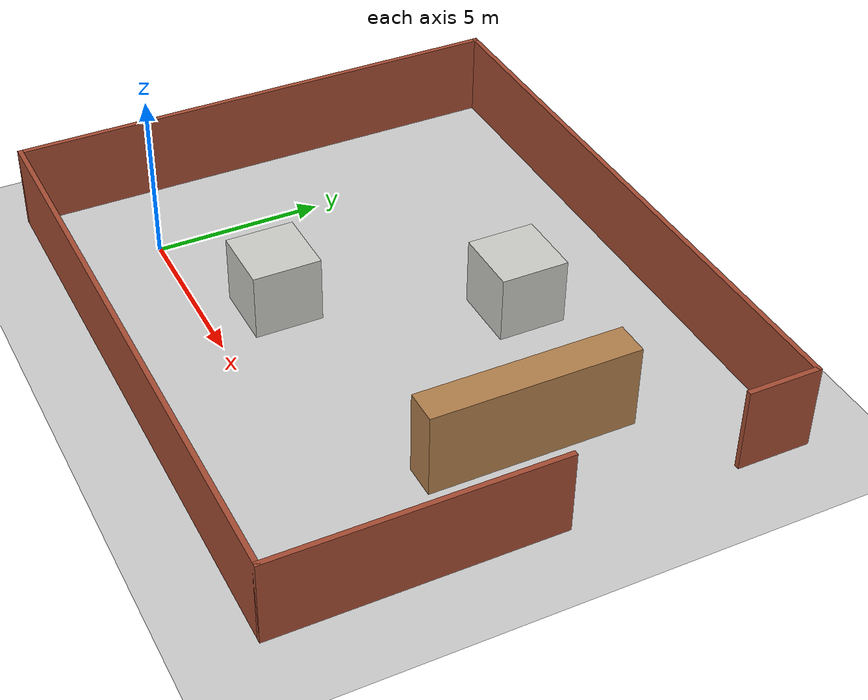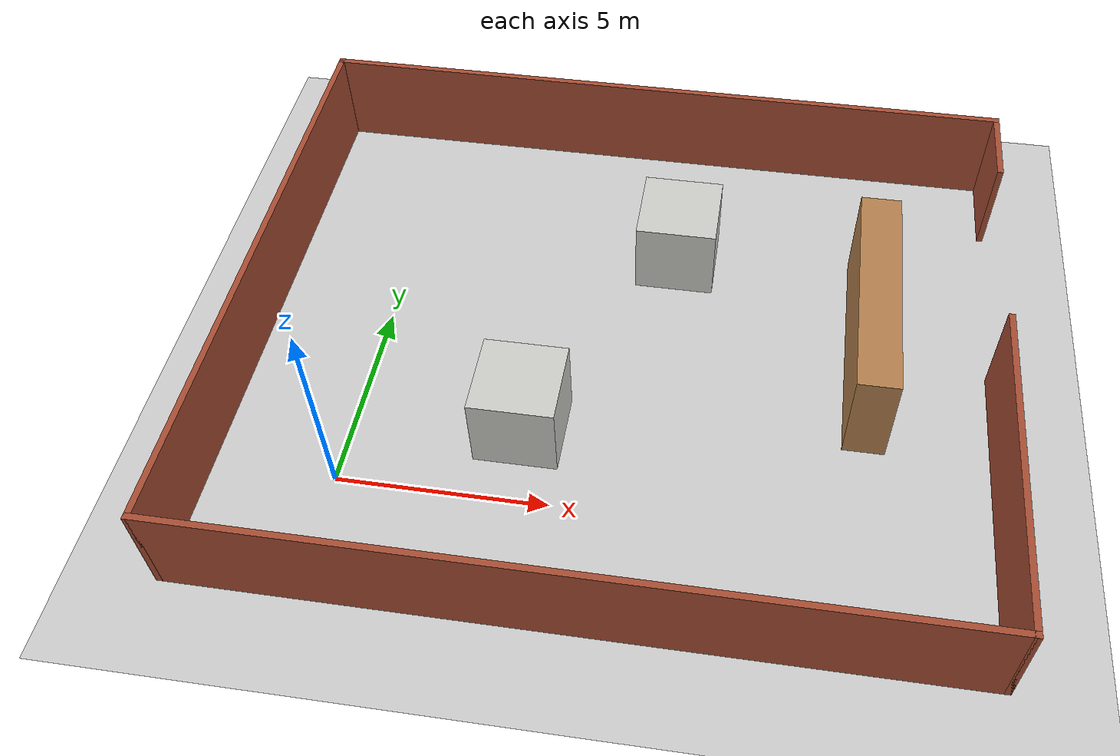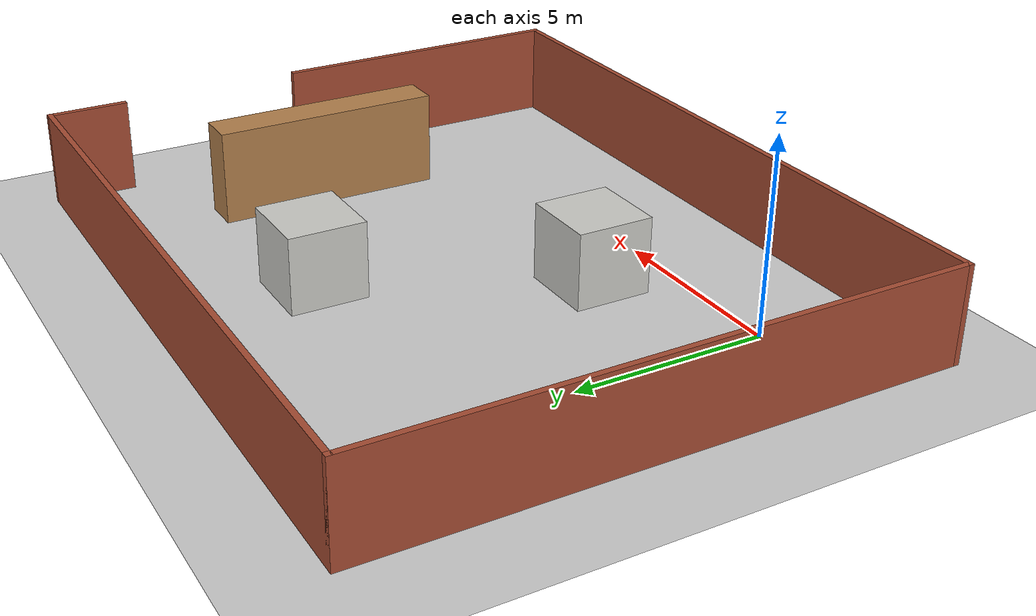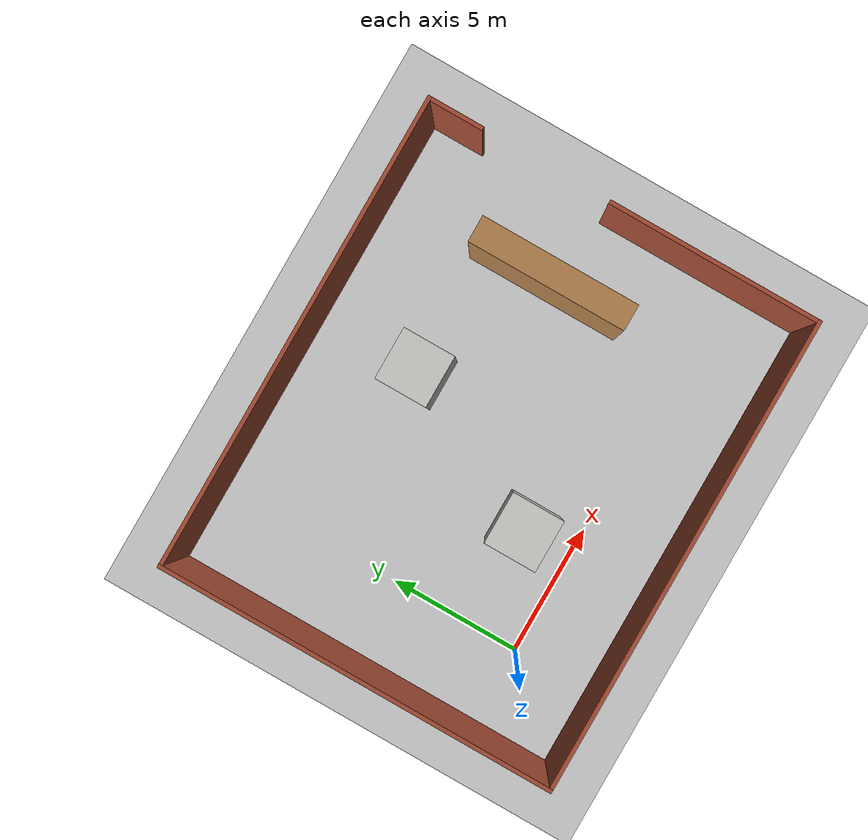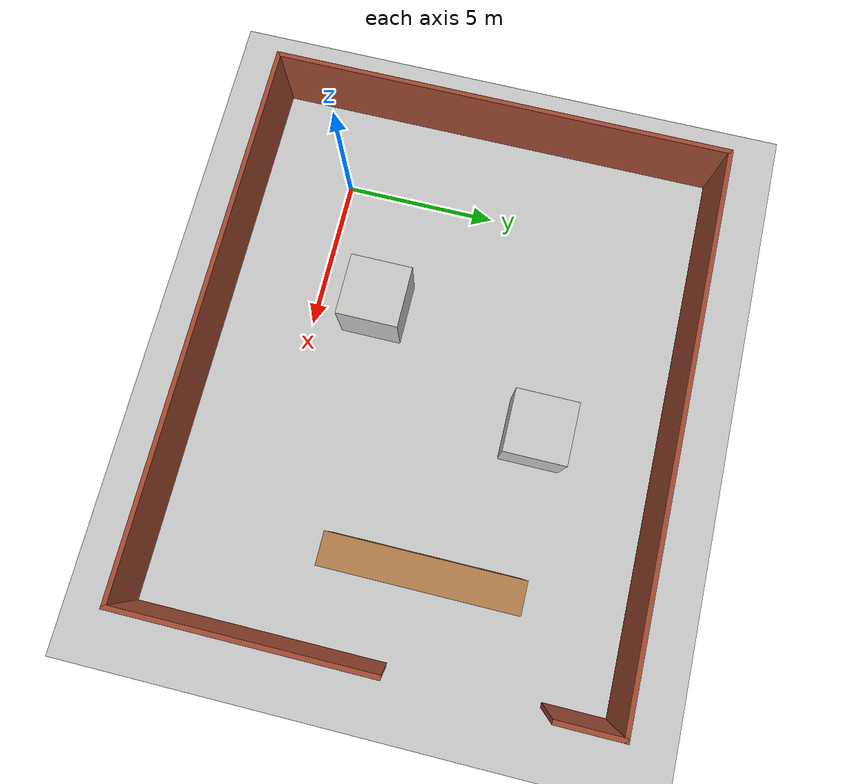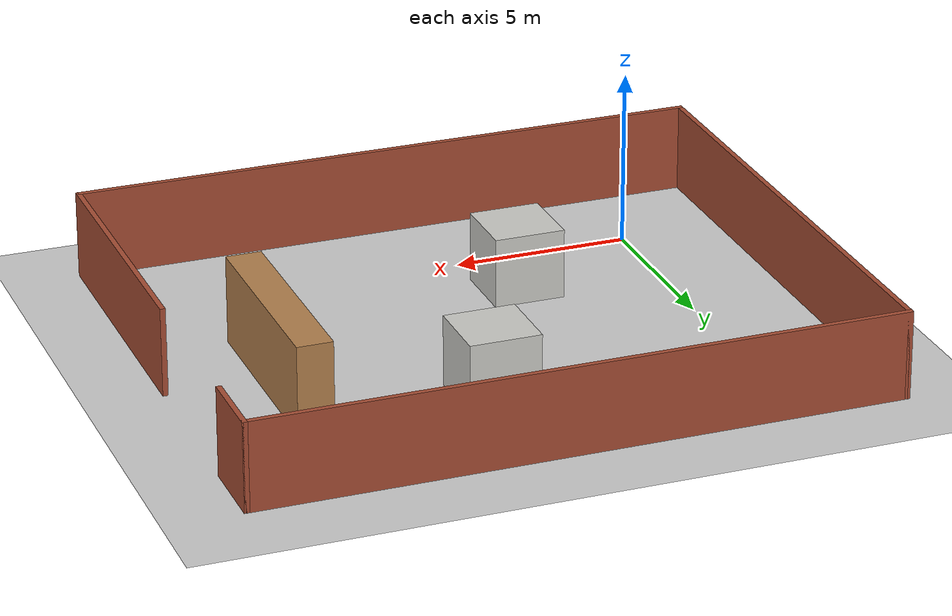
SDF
<sdf version="1.6">
 <world name="default">
  <scene><ambient>0.4 0.4 0.4 1</ambient><background>0.7 0.7 0.7 1</background><shadows>1</shadows></scene>
  <light name="sun" type="directional">
   <pose>0 0 10 0 -0 0</pose>
   <diffuse>0.8 0.8 0.8 1</diffuse>
   <specular>0.2 0.2 0.2 1</specular>
   <attenuation>
    <range>1000</range>
    <constant>0.9</constant>
    <linear>0.01</linear>
    <quadratic>0.001</quadratic>
   </attenuation>
   <direction>-0.5 0.1 -0.9</direction>
  </light>
  <model name="ground_plane">
   <static>1</static>
   <link name="link">
    <collision name="collision">
     <geometry><plane><normal>0 0 1</normal><size>100 100</size></plane></geometry>
     <surface>
      <contact><collide_bitmask>65535</collide_bitmask></contact>
      <friction><ode><mu>100</mu><mu2>50</mu2></ode></friction>
     </surface>
    </collision>
    <visual name="visual">
     <cast_shadows>0</cast_shadows>
     <geometry><plane><normal>0 0 1</normal><size>100 100</size></plane></geometry>
     <material>
      <script><uri>file://media/materials/scripts/gazebo.material</uri><name>Gazebo/Grey</name></script>
     </material>
    </visual>
   </link>
  </model>
  <physics name="default_physics" default="0" type="ode">
   <real_time_update_rate>1000</real_time_update_rate>
   <max_step_size>0.001</max_step_size>
   <real_time_factor>1</real_time_factor>
   <ode>
    <solver>
     <type>quick</type>
     <iters>150</iters>
     <precon_iters>0</precon_iters>
     <sor>1.4</sor>
     <use_dynamic_moi_rescaling>1</use_dynamic_moi_rescaling>
    </solver>
    <constraints>
     <cfm>1e-05</cfm>
     <erp>0.2</erp>
     <contact_max_correcting_vel>2000</contact_max_correcting_vel>
     <contact_surface_layer>0.01</contact_surface_layer>
    </constraints>
   </ode>
  </physics>
  <gravity>0 0 -9.8</gravity>
  <magnetic_field>6e-06 2.3e-05 -4.2e-05</magnetic_field>
  <atmosphere type="adiabatic"/>
  <audio><device>default</device></audio>
  <spherical_coordinates>
   <surface_model>EARTH_WGS84</surface_model>
   <latitude_deg>0</latitude_deg>
   <longitude_deg>0</longitude_deg>
   <elevation>0</elevation>
   <heading_deg>0</heading_deg>
  </spherical_coordinates>
  <model name="hm2_wall_0">
   <pose>12 5.5 0 0 -0 0</pose>
   <link name="Wall_4">
    <collision name="Wall_4_Collision">
     <geometry><box><size>6 1 2.5</size></box></geometry>
     <pose>0 0 1.25 0 -0 0</pose>
    </collision>
    <visual name="Wall_4_Visual">
     <pose>0 0 1.25 0 -0 0</pose>
     <geometry><box><size>6 1 2.5</size></box></geometry>
     <material>
      <script><uri>file://media/materials/scripts/gazebo.material</uri><name>Gazebo/Wood</name></script>
      <ambient>1 1 1 1</ambient>
     </material>
     <meta><layer>0</layer></meta>
    </visual>
    <pose>0 0 0 0 -0 -1.5708</pose>
   </link>
   <static>1</static>
  </model>
  <model name="hm2_boxes">
   <pose>5.5 5 0 0 -0 0</pose>
   <link name="Wall_11">
    <collision name="Wall_11_Collision">
     <geometry><box><size>2 2 2</size></box></geometry>
     <pose>0 0 1 0 -0 0</pose>
    </collision>
    <visual name="Wall_11_Visual">
     <pose>0 0 1 0 -0 0</pose>
     <geometry><box><size>2 2 2</size></box></geometry>
     <material>
      <script><uri>file://media/materials/scripts/gazebo.material</uri><name>Gazebo/CeilingTiled</name></script>
      <ambient>0.921569 0.807843 0.615686 1</ambient>
     </material>
     <meta><layer>0</layer></meta>
    </visual>
    <pose>-1.5 -3 0 0 -0 0</pose>
   </link>
   <link name="Wall_9">
    <collision name="Wall_9_Collision">
     <geometry><box><size>2 2 2</size></box></geometry>
     <pose>0 0 1 0 -0 0</pose>
    </collision>
    <visual name="Wall_9_Visual">
     <pose>0 0 1 0 -0 0</pose>
     <geometry><box><size>2 2 2</size></box></geometry>
     <material>
      <script><uri>file://media/materials/scripts/gazebo.material</uri><name>Gazebo/CeilingTiled</name></script>
      <ambient>0.921569 0.807843 0.615686 1</ambient>
     </material>
     <meta><layer>0</layer></meta>
    </visual>
    <pose>1.5 3 0 0 -0 0</pose>
   </link>
   <static>1</static>
  </model>
  <model name="hw2_room">
   <pose>6 4.5 0 0 -0 0</pose>
   <link name="Wall_18">
    <collision name="Wall_18_Collision">
     <geometry><box><size>15.15 0.15 2.5</size></box></geometry>
     <pose>0 0 1.25 0 -0 0</pose>
    </collision>
    <visual name="Wall_18_Visual">
     <pose>0 0 1.25 0 -0 0</pose>
     <geometry><box><size>15.15 0.15 2.5</size></box></geometry>
     <material>
      <script><uri>file://media/materials/scripts/gazebo.material</uri><name>Gazebo/Bricks</name></script>
      <ambient>1 1 1 1</ambient>
     </material>
     <meta><layer>0</layer></meta>
    </visual>
    <pose>-9 0 0 0 -0 1.5708</pose>
   </link>
   <link name="Wall_20">
    <collision name="Wall_20_Collision">
     <geometry><box><size>18.15 0.15 2.5</size></box></geometry>
     <pose>0 0 1.25 0 -0 0</pose>
    </collision>
    <visual name="Wall_20_Visual">
     <pose>0 0 1.25 0 -0 0</pose>
     <geometry><box><size>18.15 0.15 2.5</size></box></geometry>
     <material>
      <script><uri>file://media/materials/scripts/gazebo.material</uri><name>Gazebo/Bricks</name></script>
      <ambient>1 1 1 1</ambient>
     </material>
     <meta><layer>0</layer></meta>
    </visual>
    <pose>0 -7.5 0 0 -0 0</pose>
   </link>
   <link name="Wall_22">
    <collision name="Wall_22_Collision">
     <geometry><box><size>8.15 0.15 2.5</size></box></geometry>
     <pose>0 0 1.25 0 -0 0</pose>
    </collision>
    <visual name="Wall_22_Visual">
     <pose>0 0 1.25 0 -0 0</pose>
     <geometry><box><size>8.15 0.15 2.5</size></box></geometry>
     <material>
      <script><uri>file://media/materials/scripts/gazebo.material</uri><name>Gazebo/Bricks</name></script>
      <ambient>1 1 1 1</ambient>
     </material>
     <meta><layer>0</layer></meta>
    </visual>
    <pose>9 -3.5 0 0 -0 1.5708</pose>
   </link>
   <link name="Wall_24">
    <collision name="Wall_24_Collision">
     <geometry><box><size>18.15 0.15 2.5</size></box></geometry>
     <pose>0 0 1.25 0 -0 0</pose>
    </collision>
    <visual name="Wall_24_Visual">
     <pose>0 0 1.25 0 -0 0</pose>
     <geometry><box><size>18.15 0.15 2.5</size></box></geometry>
     <material>
      <script><uri>file://media/materials/scripts/gazebo.material</uri><name>Gazebo/Bricks</name></script>
      <ambient>1 1 1 1</ambient>
     </material>
     <meta><layer>0</layer></meta>
    </visual>
    <pose>0 7.5 0 0 -0 0</pose>
   </link>
   <link name="Wall_26">
    <collision name="Wall_26_Collision">
     <geometry><box><size>2.15 0.15 2.5</size></box></geometry>
     <pose>0 0 1.25 0 -0 0</pose>
    </collision>
    <visual name="Wall_26_Visual">
     <pose>0 0 1.25 0 -0 0</pose>
     <geometry><box><size>2.15 0.15 2.5</size></box></geometry>
     <material>
      <script><uri>file://media/materials/scripts/gazebo.material</uri><name>Gazebo/Bricks</name></script>
      <ambient>1 1 1 1</ambient>
     </material>
     <meta><layer>0</layer></meta>
    </visual>
    <pose>9 6.5 0 0 -0 -1.5708</pose>
   </link>
   <static>1</static>
  </model>
 </world>
</sdf>
